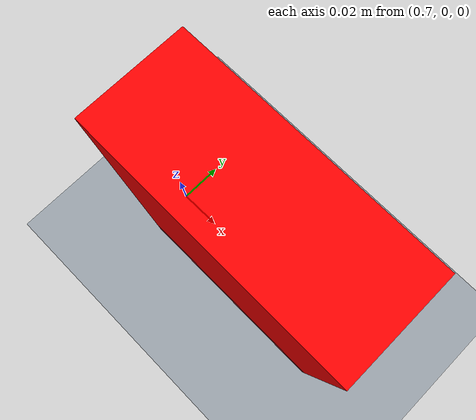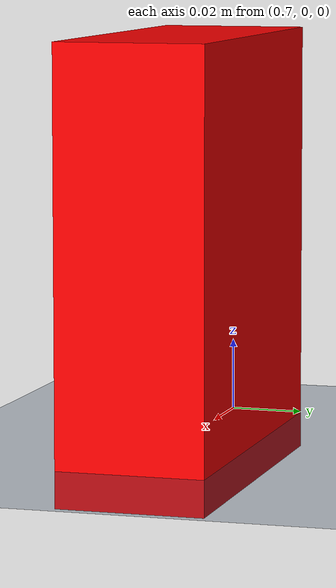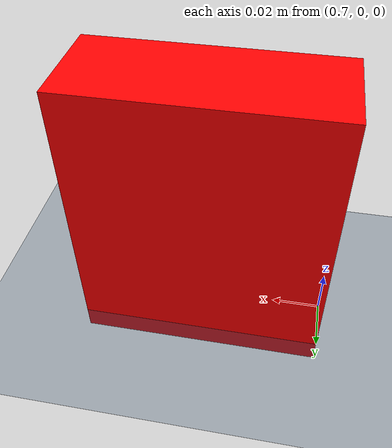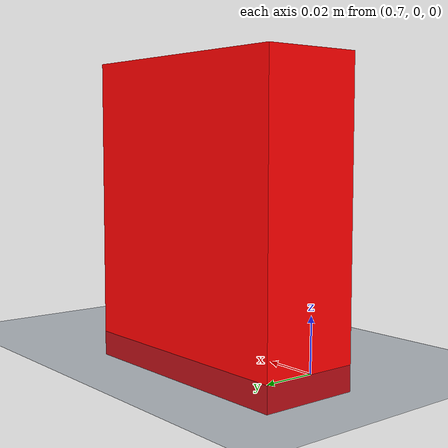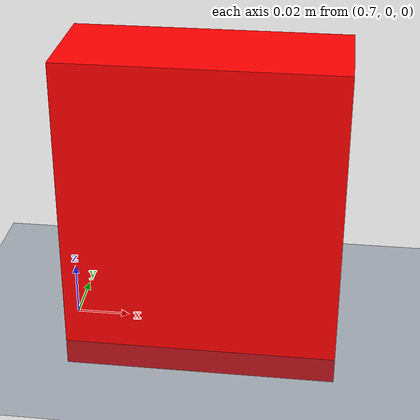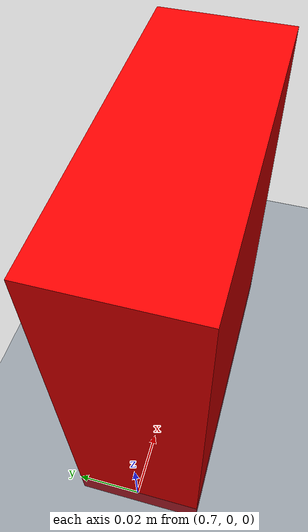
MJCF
<mujoco model="panda scene">

  <statistic center="0.3 0 0.4" extent="1"/>

  <visual>
    <headlight diffuse="0.6 0.6 0.6" ambient="0.3 0.3 0.3" specular="0 0 0"/>
    <rgba haze="0.15 0.25 0.35 1"/>
    <global azimuth="120" elevation="-20"/>

  </visual>

  <asset>
    <texture type="skybox" builtin="gradient" rgb1="0.3 0.5 0.7" rgb2="0 0 0" width="512" height="3072"/>
    <texture type="2d" name="groundplane" builtin="checker" mark="edge" rgb1="0.2 0.3 0.4" rgb2="0.1 0.2 0.3"
      markrgb="0.8 0.8 0.8" width="300" height="300"/>
    <material name="groundplane" texture="groundplane" texuniform="true" texrepeat="5 5" reflectance="0.2"/>
  </asset>

  <worldbody>
    <light pos="0 0 1.5" dir="0 0 -1" directional="true"/>
    <geom name="floor" size="0 0 0.05" type="plane" material="groundplane"/>

    <camera name="depth_camera" pos="0.355 0 0.065" euler="0 0 0" fovy="60"/> <!-- 修改为深度相机 -->

    <body name="cube" pos="0.75 0 0.05">
      <freejoint/>
      <geom type="box" size="0.05 0.02 0.06" rgba="1 0 0 1" mass="0.01" friction="3.0 2.0 0.003"/>
    </body>
  </worldbody>
</mujoco>
